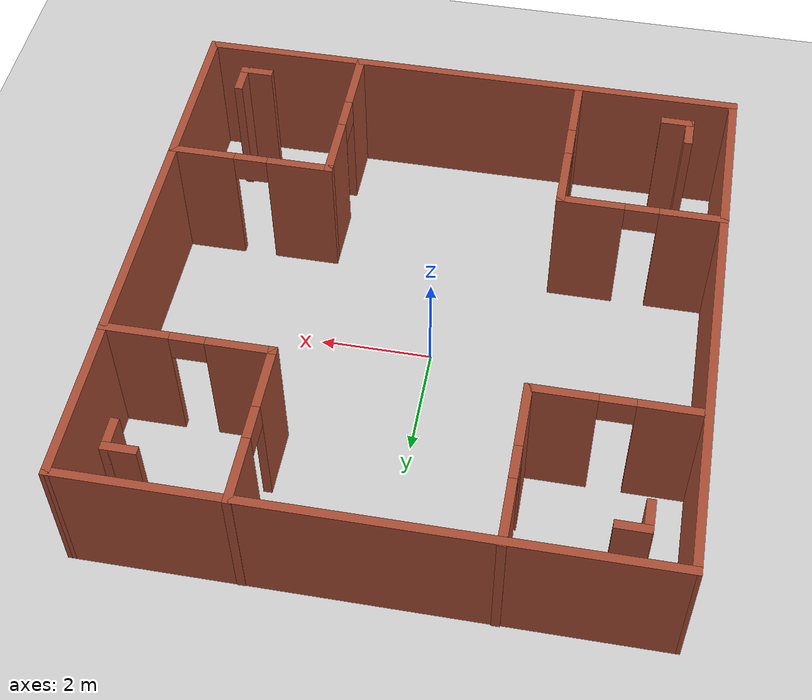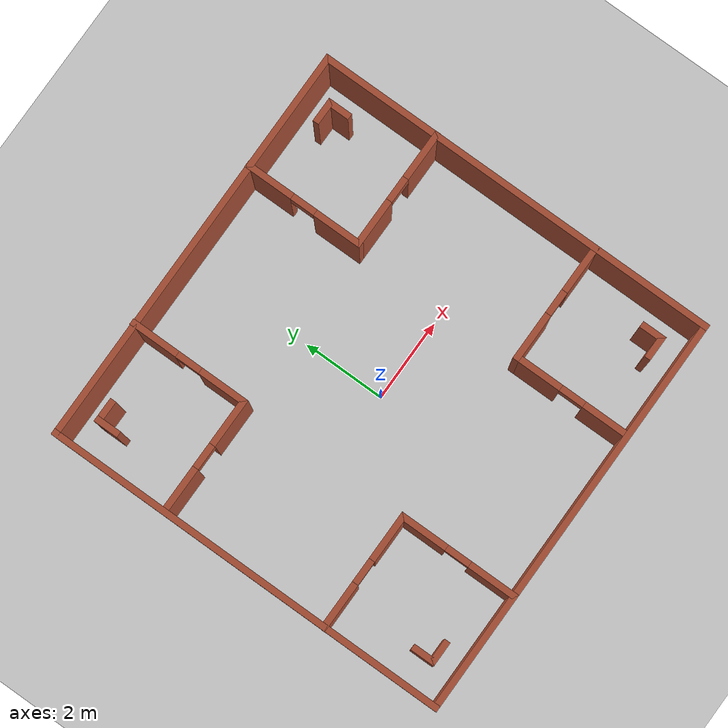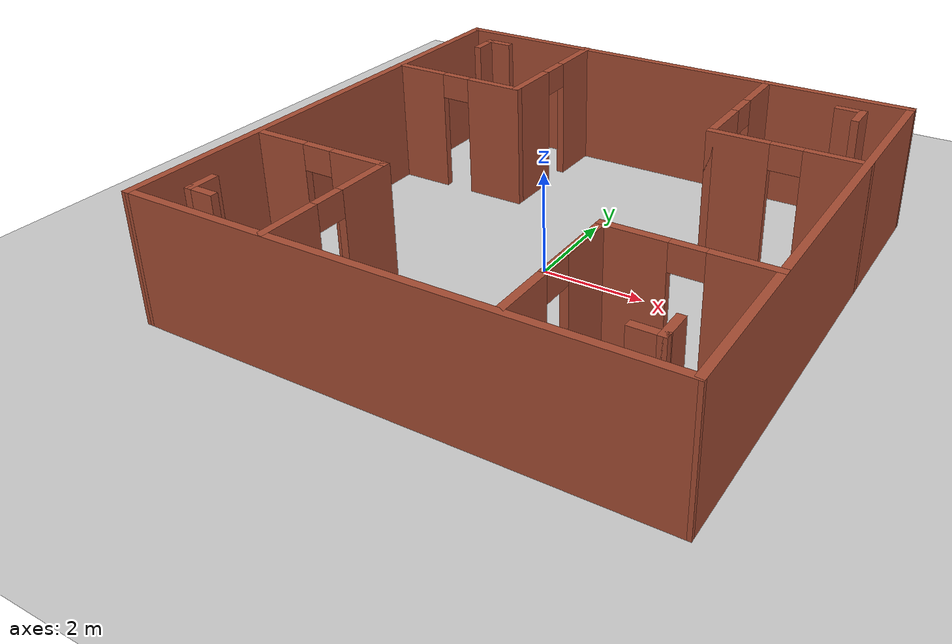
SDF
<sdf version="1.7">
 <world name="default">
  <light name="sun" type="directional">
   <pose>0 0 10 0 -0 0</pose>
   <diffuse>0.8 0.8 0.8 1</diffuse>
   <specular>0.2 0.2 0.2 1</specular>
   <attenuation>
    <range>1000</range>
    <constant>0.9</constant>
    <linear>0.01</linear>
    <quadratic>0.001</quadratic>
   </attenuation>
   <direction>-0.5 0.1 -0.9</direction>
   <spot><inner_angle>0</inner_angle><outer_angle>0</outer_angle><falloff>0</falloff></spot>
  </light>
  <model name="ground_plane">
   <static>1</static>
   <link name="link">
    <collision name="collision">
     <geometry><plane><normal>0 0 1</normal><size>100 100</size></plane></geometry>
     <surface>
      <contact><collide_bitmask>65535</collide_bitmask></contact>
      <friction><ode><mu>100</mu><mu2>50</mu2></ode></friction>
     </surface>
    </collision>
    <visual name="visual">
     <cast_shadows>0</cast_shadows>
     <geometry><plane><normal>0 0 1</normal><size>100 100</size></plane></geometry>
     <material>
      <script><uri>file://media/materials/scripts/gazebo.material</uri><name>Gazebo/Grey</name></script>
     </material>
    </visual>
   </link>
  </model>
  <gravity>0 0 -9.8</gravity>
  <magnetic_field>6e-06 2.3e-05 -4.2e-05</magnetic_field>
  <atmosphere type="adiabatic"/>
  <physics type="ode">
   <max_step_size>0.001</max_step_size>
   <real_time_factor>1</real_time_factor>
   <real_time_update_rate>1000</real_time_update_rate>
  </physics>
  <scene><ambient>0.4 0.4 0.4 1</ambient><background>0.7 0.7 0.7 1</background><shadows>1</shadows></scene>
  <spherical_coordinates>
   <surface_model>EARTH_WGS84</surface_model>
   <latitude_deg>0</latitude_deg>
   <longitude_deg>0</longitude_deg>
   <elevation>0</elevation>
   <heading_deg>0</heading_deg>
  </spherical_coordinates>
  <model name="race_gaebo.world">
   <pose>0.128209 0.08888 0 0 -0 0</pose>
   <link name="Wall_11">
    <pose>-2.06944 3.51255 0 0 -0 -1.5708</pose>
    <visual name="Wall_11_Visual_0">
     <pose>-0.900458 0 1.25 0 -0 0</pose>
     <geometry><box><size>1.19908 0.15 2.5</size></box></geometry>
     <material>
      <script><uri>file://media/materials/scripts/gazebo.material</uri><name>Gazebo/Bricks</name></script>
      <ambient>1 1 1 1</ambient>
     </material>
     <meta><layer>0</layer></meta>
    </visual>
    <collision name="Wall_11_Collision_0">
     <geometry><box><size>1.19908 0.15 2.5</size></box></geometry>
     <pose>-0.900458 0 1.25 0 -0 0</pose>
    </collision>
    <visual name="Wall_11_Visual_1">
     <pose>0.899542 0 1.25 0 -0 0</pose>
     <geometry><box><size>1.20092 0.15 2.5</size></box></geometry>
     <material>
      <script><uri>file://media/materials/scripts/gazebo.material</uri><name>Gazebo/Bricks</name></script>
      <ambient>1 1 1 1</ambient>
     </material>
     <meta><layer>0</layer></meta>
    </visual>
    <collision name="Wall_11_Collision_1">
     <geometry><box><size>1.20092 0.15 2.5</size></box></geometry>
     <pose>0.899542 0 1.25 0 -0 0</pose>
    </collision>
    <visual name="Wall_11_Visual_2">
     <pose>-0.000916 0 2.25 0 -0 0</pose>
     <geometry><box><size>0.6 0.15 0.5</size></box></geometry>
     <material>
      <script><uri>file://media/materials/scripts/gazebo.material</uri><name>Gazebo/Bricks</name></script>
      <ambient>1 1 1 1</ambient>
     </material>
     <meta><layer>0</layer></meta>
    </visual>
    <collision name="Wall_11_Collision_2">
     <geometry><box><size>0.6 0.15 0.5</size></box></geometry>
     <pose>-0.000916 0 2.25 0 -0 0</pose>
    </collision>
   </link>
   <link name="Wall_12">
    <pose>-3.49444 2.08755 0 0 -0 3.14159</pose>
    <visual name="Wall_12_Visual_0">
     <pose>-0.90009 0 1.25 0 -0 0</pose>
     <geometry><box><size>1.19982 0.15 2.5</size></box></geometry>
     <material>
      <script><uri>file://media/materials/scripts/gazebo.material</uri><name>Gazebo/Bricks</name></script>
      <ambient>1 1 1 1</ambient>
     </material>
     <meta><layer>0</layer></meta>
    </visual>
    <collision name="Wall_12_Collision_0">
     <geometry><box><size>1.19982 0.15 2.5</size></box></geometry>
     <pose>-0.90009 0 1.25 0 -0 0</pose>
    </collision>
    <visual name="Wall_12_Visual_1">
     <pose>0.89991 0 1.25 0 -0 0</pose>
     <geometry><box><size>1.20018 0.15 2.5</size></box></geometry>
     <material>
      <script><uri>file://media/materials/scripts/gazebo.material</uri><name>Gazebo/Bricks</name></script>
      <ambient>1 1 1 1</ambient>
     </material>
     <meta><layer>0</layer></meta>
    </visual>
    <collision name="Wall_12_Collision_1">
     <geometry><box><size>1.20018 0.15 2.5</size></box></geometry>
     <pose>0.89991 0 1.25 0 -0 0</pose>
    </collision>
    <visual name="Wall_12_Visual_2">
     <pose>-0.000181 0 2.25 0 -0 0</pose>
     <geometry><box><size>0.6 0.15 0.5</size></box></geometry>
     <material>
      <script><uri>file://media/materials/scripts/gazebo.material</uri><name>Gazebo/Bricks</name></script>
      <ambient>1 1 1 1</ambient>
     </material>
     <meta><layer>0</layer></meta>
    </visual>
    <collision name="Wall_12_Collision_2">
     <geometry><box><size>0.6 0.15 0.5</size></box></geometry>
     <pose>-0.000181 0 2.25 0 -0 0</pose>
    </collision>
   </link>
   <link name="Wall_15">
    <pose>2.08092 3.51282 0 0 -0 -1.5708</pose>
    <visual name="Wall_15_Visual_0">
     <pose>-0.899164 0 1.25 0 -0 0</pose>
     <geometry><box><size>1.20167 0.15 2.5</size></box></geometry>
     <material>
      <script><uri>file://media/materials/scripts/gazebo.material</uri><name>Gazebo/Bricks</name></script>
      <ambient>1 1 1 1</ambient>
     </material>
     <meta><layer>0</layer></meta>
    </visual>
    <collision name="Wall_15_Collision_0">
     <geometry><box><size>1.20167 0.15 2.5</size></box></geometry>
     <pose>-0.899164 0 1.25 0 -0 0</pose>
    </collision>
    <visual name="Wall_15_Visual_1">
     <pose>0.900836 0 1.25 0 -0 0</pose>
     <geometry><box><size>1.19833 0.15 2.5</size></box></geometry>
     <material>
      <script><uri>file://media/materials/scripts/gazebo.material</uri><name>Gazebo/Bricks</name></script>
      <ambient>1 1 1 1</ambient>
     </material>
     <meta><layer>0</layer></meta>
    </visual>
    <collision name="Wall_15_Collision_1">
     <geometry><box><size>1.19833 0.15 2.5</size></box></geometry>
     <pose>0.900836 0 1.25 0 -0 0</pose>
    </collision>
    <visual name="Wall_15_Visual_2">
     <pose>0.001672 0 2.25 0 -0 0</pose>
     <geometry><box><size>0.6 0.15 0.5</size></box></geometry>
     <material>
      <script><uri>file://media/materials/scripts/gazebo.material</uri><name>Gazebo/Bricks</name></script>
      <ambient>1 1 1 1</ambient>
     </material>
     <meta><layer>0</layer></meta>
    </visual>
    <collision name="Wall_15_Collision_2">
     <geometry><box><size>0.6 0.15 0.5</size></box></geometry>
     <pose>0.001672 0 2.25 0 -0 0</pose>
    </collision>
   </link>
   <link name="Wall_16">
    <pose>3.50592 2.08782 0 0 -0 0</pose>
    <visual name="Wall_16_Visual_0">
     <pose>-0.90042 0 1.25 0 -0 0</pose>
     <geometry><box><size>1.19916 0.15 2.5</size></box></geometry>
     <material>
      <script><uri>file://media/materials/scripts/gazebo.material</uri><name>Gazebo/Bricks</name></script>
      <ambient>1 1 1 1</ambient>
     </material>
     <meta><layer>0</layer></meta>
    </visual>
    <collision name="Wall_16_Collision_0">
     <geometry><box><size>1.19916 0.15 2.5</size></box></geometry>
     <pose>-0.90042 0 1.25 0 -0 0</pose>
    </collision>
    <visual name="Wall_16_Visual_1">
     <pose>0.89958 0 1.25 0 -0 0</pose>
     <geometry><box><size>1.20084 0.15 2.5</size></box></geometry>
     <material>
      <script><uri>file://media/materials/scripts/gazebo.material</uri><name>Gazebo/Bricks</name></script>
      <ambient>1 1 1 1</ambient>
     </material>
     <meta><layer>0</layer></meta>
    </visual>
    <collision name="Wall_16_Collision_1">
     <geometry><box><size>1.20084 0.15 2.5</size></box></geometry>
     <pose>0.89958 0 1.25 0 -0 0</pose>
    </collision>
    <visual name="Wall_16_Visual_2">
     <pose>-0.00084 0 2.25 0 -0 0</pose>
     <geometry><box><size>0.6 0.15 0.5</size></box></geometry>
     <material>
      <script><uri>file://media/materials/scripts/gazebo.material</uri><name>Gazebo/Bricks</name></script>
      <ambient>1 1 1 1</ambient>
     </material>
     <meta><layer>0</layer></meta>
    </visual>
    <collision name="Wall_16_Collision_2">
     <geometry><box><size>0.6 0.15 0.5</size></box></geometry>
     <pose>-0.00084 0 2.25 0 -0 0</pose>
    </collision>
   </link>
   <link name="Wall_2">
    <collision name="Wall_2_Collision">
     <geometry><box><size>10 0.15 2.5</size></box></geometry>
     <pose>0 0 1.25 0 -0 0</pose>
    </collision>
    <visual name="Wall_2_Visual">
     <pose>0 0 1.25 0 -0 0</pose>
     <geometry><box><size>10 0.15 2.5</size></box></geometry>
     <material>
      <script><uri>file://media/materials/scripts/gazebo.material</uri><name>Gazebo/Bricks</name></script>
      <ambient>1 1 1 1</ambient>
     </material>
     <meta><layer>0</layer></meta>
    </visual>
    <pose>-4.92501 -0.012824 0 0 -0 -1.572</pose>
   </link>
   <link name="Wall_21">
    <pose>-3.5059 -2.06244 0 0 -0 0</pose>
    <visual name="Wall_21_Visual_0">
     <pose>-0.900292 0 1.25 0 -0 0</pose>
     <geometry><box><size>1.19942 0.15 2.5</size></box></geometry>
     <material>
      <script><uri>file://media/materials/scripts/gazebo.material</uri><name>Gazebo/Bricks</name></script>
      <ambient>1 1 1 1</ambient>
     </material>
     <meta><layer>0</layer></meta>
    </visual>
    <collision name="Wall_21_Collision_0">
     <geometry><box><size>1.19942 0.15 2.5</size></box></geometry>
     <pose>-0.900292 0 1.25 0 -0 0</pose>
    </collision>
    <visual name="Wall_21_Visual_1">
     <pose>0.899708 0 1.25 0 -0 0</pose>
     <geometry><box><size>1.20058 0.15 2.5</size></box></geometry>
     <material>
      <script><uri>file://media/materials/scripts/gazebo.material</uri><name>Gazebo/Bricks</name></script>
      <ambient>1 1 1 1</ambient>
     </material>
     <meta><layer>0</layer></meta>
    </visual>
    <collision name="Wall_21_Collision_1">
     <geometry><box><size>1.20058 0.15 2.5</size></box></geometry>
     <pose>0.899708 0 1.25 0 -0 0</pose>
    </collision>
    <visual name="Wall_21_Visual_2">
     <pose>-0.000584 0 2.25 0 -0 0</pose>
     <geometry><box><size>0.6 0.15 0.5</size></box></geometry>
     <material>
      <script><uri>file://media/materials/scripts/gazebo.material</uri><name>Gazebo/Bricks</name></script>
      <ambient>1 1 1 1</ambient>
     </material>
     <meta><layer>0</layer></meta>
    </visual>
    <collision name="Wall_21_Collision_2">
     <geometry><box><size>0.6 0.15 0.5</size></box></geometry>
     <pose>-0.000584 0 2.25 0 -0 0</pose>
    </collision>
   </link>
   <link name="Wall_22">
    <pose>-2.0809 -3.48745 0 0 -0 -1.5708</pose>
    <visual name="Wall_22_Visual_0">
     <pose>-0.900086 0 1.25 0 -0 0</pose>
     <geometry><box><size>1.19983 0.15 2.5</size></box></geometry>
     <material>
      <script><uri>file://media/materials/scripts/gazebo.material</uri><name>Gazebo/Bricks</name></script>
      <ambient>1 1 1 1</ambient>
     </material>
     <meta><layer>0</layer></meta>
    </visual>
    <collision name="Wall_22_Collision_0">
     <geometry><box><size>1.19983 0.15 2.5</size></box></geometry>
     <pose>-0.900086 0 1.25 0 -0 0</pose>
    </collision>
    <visual name="Wall_22_Visual_1">
     <pose>0.899914 0 1.25 0 -0 0</pose>
     <geometry><box><size>1.20017 0.15 2.5</size></box></geometry>
     <material>
      <script><uri>file://media/materials/scripts/gazebo.material</uri><name>Gazebo/Bricks</name></script>
      <ambient>1 1 1 1</ambient>
     </material>
     <meta><layer>0</layer></meta>
    </visual>
    <collision name="Wall_22_Collision_1">
     <geometry><box><size>1.20017 0.15 2.5</size></box></geometry>
     <pose>0.899914 0 1.25 0 -0 0</pose>
    </collision>
    <visual name="Wall_22_Visual_2">
     <pose>-0.000172 0 2.25 0 -0 0</pose>
     <geometry><box><size>0.6 0.15 0.5</size></box></geometry>
     <material>
      <script><uri>file://media/materials/scripts/gazebo.material</uri><name>Gazebo/Bricks</name></script>
      <ambient>1 1 1 1</ambient>
     </material>
     <meta><layer>0</layer></meta>
    </visual>
    <collision name="Wall_22_Collision_2">
     <geometry><box><size>0.6 0.15 0.5</size></box></geometry>
     <pose>-0.000172 0 2.25 0 -0 0</pose>
    </collision>
   </link>
   <link name="Wall_25">
    <pose>3.49445 -2.06217 0 0 -0 3.14159</pose>
    <visual name="Wall_25_Visual_0">
     <pose>-0.899084 0 1.25 0 -0 0</pose>
     <geometry><box><size>1.20183 0.15 2.5</size></box></geometry>
     <material>
      <script><uri>file://media/materials/scripts/gazebo.material</uri><name>Gazebo/Bricks</name></script>
      <ambient>1 1 1 1</ambient>
     </material>
     <meta><layer>0</layer></meta>
    </visual>
    <collision name="Wall_25_Collision_0">
     <geometry><box><size>1.20183 0.15 2.5</size></box></geometry>
     <pose>-0.899084 0 1.25 0 -0 0</pose>
    </collision>
    <visual name="Wall_25_Visual_1">
     <pose>0.900916 0 1.25 0 -0 0</pose>
     <geometry><box><size>1.19817 0.15 2.5</size></box></geometry>
     <material>
      <script><uri>file://media/materials/scripts/gazebo.material</uri><name>Gazebo/Bricks</name></script>
      <ambient>1 1 1 1</ambient>
     </material>
     <meta><layer>0</layer></meta>
    </visual>
    <collision name="Wall_25_Collision_1">
     <geometry><box><size>1.19817 0.15 2.5</size></box></geometry>
     <pose>0.900916 0 1.25 0 -0 0</pose>
    </collision>
    <visual name="Wall_25_Visual_2">
     <pose>0.001831 0 2.25 0 -0 0</pose>
     <geometry><box><size>0.6 0.15 0.5</size></box></geometry>
     <material>
      <script><uri>file://media/materials/scripts/gazebo.material</uri><name>Gazebo/Bricks</name></script>
      <ambient>1 1 1 1</ambient>
     </material>
     <meta><layer>0</layer></meta>
    </visual>
    <collision name="Wall_25_Collision_2">
     <geometry><box><size>0.6 0.15 0.5</size></box></geometry>
     <pose>0.001831 0 2.25 0 -0 0</pose>
    </collision>
   </link>
   <link name="Wall_26">
    <pose>2.06945 -3.48717 0 0 -0 -1.5708</pose>
    <visual name="Wall_26_Visual_0">
     <pose>-0.898441 0 1.25 0 -0 0</pose>
     <geometry><box><size>1.20312 0.15 2.5</size></box></geometry>
     <material>
      <script><uri>file://media/materials/scripts/gazebo.material</uri><name>Gazebo/Bricks</name></script>
      <ambient>1 1 1 1</ambient>
     </material>
     <meta><layer>0</layer></meta>
    </visual>
    <collision name="Wall_26_Collision_0">
     <geometry><box><size>1.20312 0.15 2.5</size></box></geometry>
     <pose>-0.898441 0 1.25 0 -0 0</pose>
    </collision>
    <visual name="Wall_26_Visual_1">
     <pose>0.901559 0 1.25 0 -0 0</pose>
     <geometry><box><size>1.19688 0.15 2.5</size></box></geometry>
     <material>
      <script><uri>file://media/materials/scripts/gazebo.material</uri><name>Gazebo/Bricks</name></script>
      <ambient>1 1 1 1</ambient>
     </material>
     <meta><layer>0</layer></meta>
    </visual>
    <collision name="Wall_26_Collision_1">
     <geometry><box><size>1.19688 0.15 2.5</size></box></geometry>
     <pose>0.901559 0 1.25 0 -0 0</pose>
    </collision>
    <visual name="Wall_26_Visual_2">
     <pose>0.003117 0 2.25 0 -0 0</pose>
     <geometry><box><size>0.6 0.15 0.5</size></box></geometry>
     <material>
      <script><uri>file://media/materials/scripts/gazebo.material</uri><name>Gazebo/Bricks</name></script>
      <ambient>1 1 1 1</ambient>
     </material>
     <meta><layer>0</layer></meta>
    </visual>
    <collision name="Wall_26_Collision_2">
     <geometry><box><size>0.6 0.15 0.5</size></box></geometry>
     <pose>0.003117 0 2.25 0 -0 0</pose>
    </collision>
   </link>
   <link name="Wall_32">
    <collision name="Wall_32_Collision">
     <geometry><box><size>0.6 0.15 2.5</size></box></geometry>
     <pose>0 0 1.25 0 -0 0</pose>
    </collision>
    <visual name="Wall_32_Visual">
     <pose>0 0 1.25 0 -0 0</pose>
     <geometry><box><size>0.6 0.15 2.5</size></box></geometry>
     <material>
      <script><uri>file://media/materials/scripts/gazebo.material</uri><name>Gazebo/Bricks</name></script>
      <ambient>1 1 1 1</ambient>
     </material>
     <meta><layer>0</layer></meta>
    </visual>
    <pose>-3.94408 4.33782 0 0 -0 0</pose>
   </link>
   <link name="Wall_34">
    <collision name="Wall_34_Collision">
     <geometry><box><size>0.6 0.15 2.5</size></box></geometry>
     <pose>0 0 1.25 0 -0 0</pose>
    </collision>
    <visual name="Wall_34_Visual">
     <pose>0 0 1.25 0 -0 0</pose>
     <geometry><box><size>0.6 0.15 2.5</size></box></geometry>
     <material>
      <script><uri>file://media/materials/scripts/gazebo.material</uri><name>Gazebo/Bricks</name></script>
      <ambient>1 1 1 1</ambient>
     </material>
     <meta><layer>0</layer></meta>
    </visual>
    <pose>-4.16908 4.11282 0 0 -0 -1.5708</pose>
   </link>
   <link name="Wall_4">
    <collision name="Wall_4_Collision">
     <geometry><box><size>10 0.15 2.5</size></box></geometry>
     <pose>0 0 1.25 0 -0 0</pose>
    </collision>
    <visual name="Wall_4_Visual">
     <pose>0 0 1.25 0 -0 0</pose>
     <geometry><box><size>10 0.15 2.5</size></box></geometry>
     <material>
      <script><uri>file://media/materials/scripts/gazebo.material</uri><name>Gazebo/Bricks</name></script>
      <ambient>1 1 1 1</ambient>
     </material>
     <meta><layer>0</layer></meta>
    </visual>
    <pose>0.005918 4.925 0 0 -0 0.002604</pose>
   </link>
   <link name="Wall_40">
    <collision name="Wall_40_Collision">
     <geometry><box><size>0.6 0.15 2.5</size></box></geometry>
     <pose>0 0 1.25 0 -0 0</pose>
    </collision>
    <visual name="Wall_40_Visual">
     <pose>0 0 1.25 0 -0 0</pose>
     <geometry><box><size>0.6 0.15 2.5</size></box></geometry>
     <material>
      <script><uri>file://media/materials/scripts/gazebo.material</uri><name>Gazebo/Bricks</name></script>
      <ambient>1 1 1 1</ambient>
     </material>
     <meta><layer>0</layer></meta>
    </visual>
    <pose>4.18092 4.11282 0 0 -0 -1.5708</pose>
   </link>
   <link name="Wall_42">
    <collision name="Wall_42_Collision">
     <geometry><box><size>0.6 0.15 2.5</size></box></geometry>
     <pose>0 0 1.25 0 -0 0</pose>
    </collision>
    <visual name="Wall_42_Visual">
     <pose>0 0 1.25 0 -0 0</pose>
     <geometry><box><size>0.6 0.15 2.5</size></box></geometry>
     <material>
      <script><uri>file://media/materials/scripts/gazebo.material</uri><name>Gazebo/Bricks</name></script>
      <ambient>1 1 1 1</ambient>
     </material>
     <meta><layer>0</layer></meta>
    </visual>
    <pose>3.95592 4.33782 0 0 -0 3.14159</pose>
   </link>
   <link name="Wall_49">
    <collision name="Wall_49_Collision">
     <geometry><box><size>0.6 0.15 2.5</size></box></geometry>
     <pose>0 0 1.25 0 -0 0</pose>
    </collision>
    <visual name="Wall_49_Visual">
     <pose>0 0 1.25 0 -0 0</pose>
     <geometry><box><size>0.6 0.15 2.5</size></box></geometry>
     <material>
      <script><uri>file://media/materials/scripts/gazebo.material</uri><name>Gazebo/Bricks</name></script>
      <ambient>1 1 1 1</ambient>
     </material>
     <meta><layer>0</layer></meta>
    </visual>
    <pose>-4.18093 -4.11282 0 0 -0 1.5708</pose>
   </link>
   <link name="Wall_51">
    <collision name="Wall_51_Collision">
     <geometry><box><size>0.6 0.15 2.5</size></box></geometry>
     <pose>0 0 1.25 0 -0 0</pose>
    </collision>
    <visual name="Wall_51_Visual">
     <pose>0 0 1.25 0 -0 0</pose>
     <geometry><box><size>0.6 0.15 2.5</size></box></geometry>
     <material>
      <script><uri>file://media/materials/scripts/gazebo.material</uri><name>Gazebo/Bricks</name></script>
      <ambient>1 1 1 1</ambient>
     </material>
     <meta><layer>0</layer></meta>
    </visual>
    <pose>-3.95593 -4.33782 0 0 -0 0</pose>
   </link>
   <link name="Wall_57">
    <collision name="Wall_57_Collision">
     <geometry><box><size>0.6 0.15 2.5</size></box></geometry>
     <pose>0 0 1.25 0 -0 0</pose>
    </collision>
    <visual name="Wall_57_Visual">
     <pose>0 0 1.25 0 -0 0</pose>
     <geometry><box><size>0.6 0.15 2.5</size></box></geometry>
     <material>
      <script><uri>file://media/materials/scripts/gazebo.material</uri><name>Gazebo/Bricks</name></script>
      <ambient>1 1 1 1</ambient>
     </material>
     <meta><layer>0</layer></meta>
    </visual>
    <pose>4.16945 -4.08717 0 0 -0 1.5708</pose>
   </link>
   <link name="Wall_59">
    <collision name="Wall_59_Collision">
     <geometry><box><size>0.6 0.15 2.5</size></box></geometry>
     <pose>0 0 1.25 0 -0 0</pose>
    </collision>
    <visual name="Wall_59_Visual">
     <pose>0 0 1.25 0 -0 0</pose>
     <geometry><box><size>0.6 0.15 2.5</size></box></geometry>
     <material>
      <script><uri>file://media/materials/scripts/gazebo.material</uri><name>Gazebo/Bricks</name></script>
      <ambient>1 1 1 1</ambient>
     </material>
     <meta><layer>0</layer></meta>
    </visual>
    <pose>3.94445 -4.31217 0 0 -0 3.14159</pose>
   </link>
   <link name="Wall_6">
    <collision name="Wall_6_Collision">
     <geometry><box><size>10 0.15 2.5</size></box></geometry>
     <pose>0 0 1.25 0 -0 0</pose>
    </collision>
    <visual name="Wall_6_Visual">
     <pose>0 0 1.25 0 -0 0</pose>
     <geometry><box><size>10 0.15 2.5</size></box></geometry>
     <material>
      <script><uri>file://media/materials/scripts/gazebo.material</uri><name>Gazebo/Bricks</name></script>
      <ambient>1 1 1 1</ambient>
     </material>
     <meta><layer>0</layer></meta>
    </visual>
    <pose>4.92518 0.012824 0 0 -0 -1.57196</pose>
   </link>
   <link name="Wall_8">
    <collision name="Wall_8_Collision">
     <geometry><box><size>10.0004 0.15 2.5</size></box></geometry>
     <pose>0 0 1.25 0 -0 0</pose>
    </collision>
    <visual name="Wall_8_Visual">
     <pose>0 0 1.25 0 -0 0</pose>
     <geometry><box><size>10.0004 0.15 2.5</size></box></geometry>
     <material>
      <script><uri>file://media/materials/scripts/gazebo.material</uri><name>Gazebo/Bricks</name></script>
      <ambient>1 1 1 1</ambient>
     </material>
     <meta><layer>0</layer></meta>
    </visual>
    <pose>-0.005741 -4.925 0 0 -0 0.002604</pose>
   </link>
   <static>1</static>
  </model>
 </world>
</sdf>
